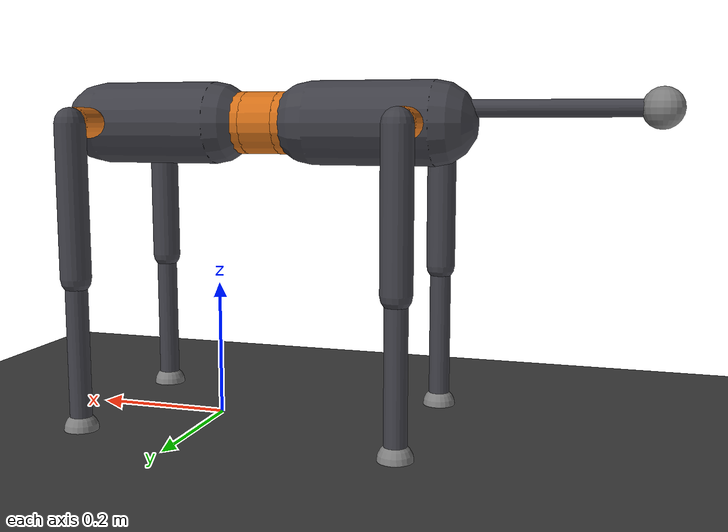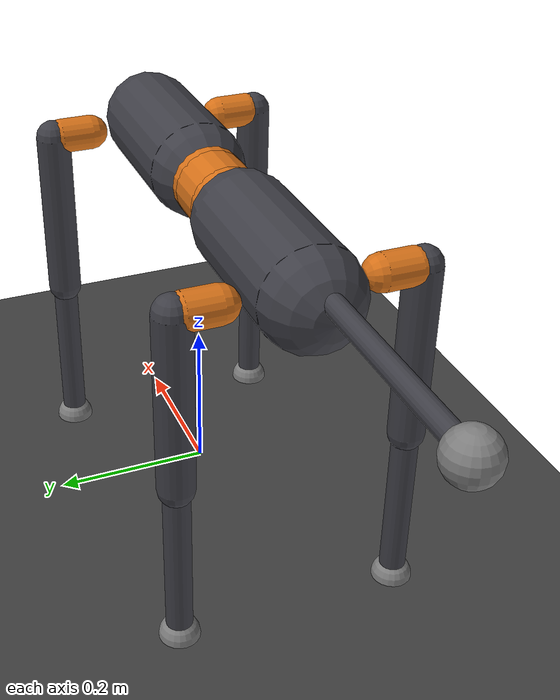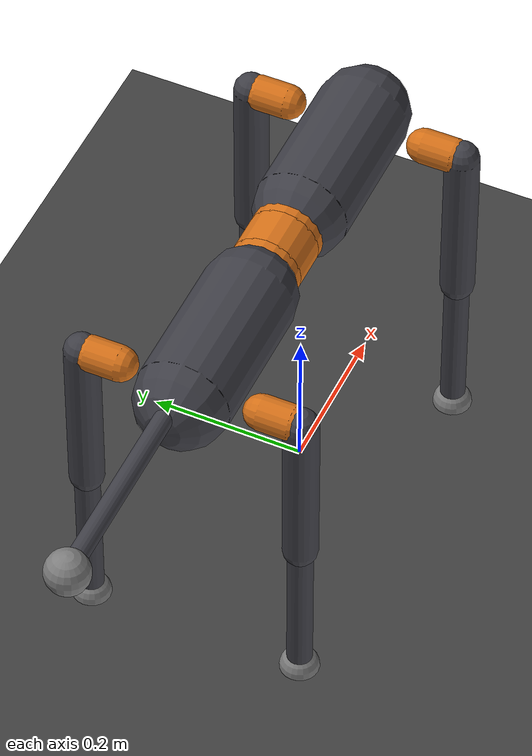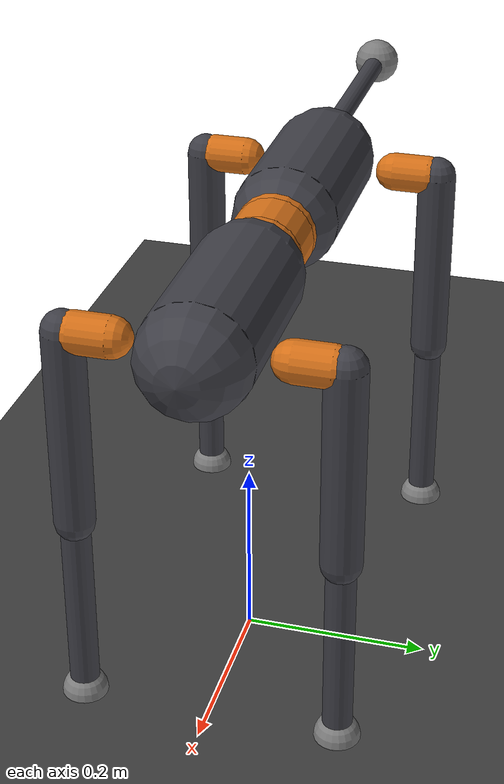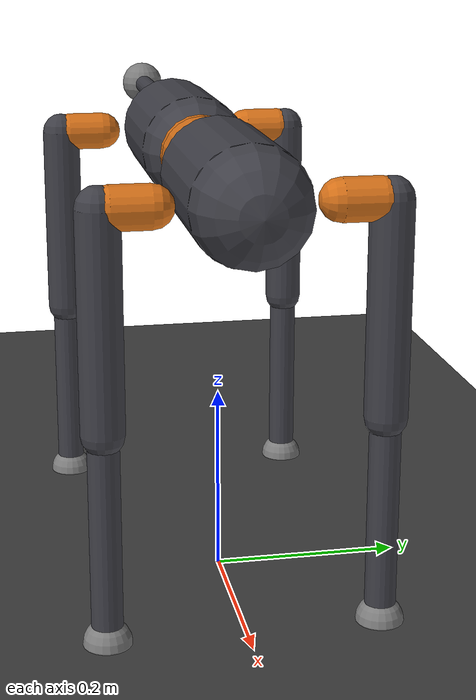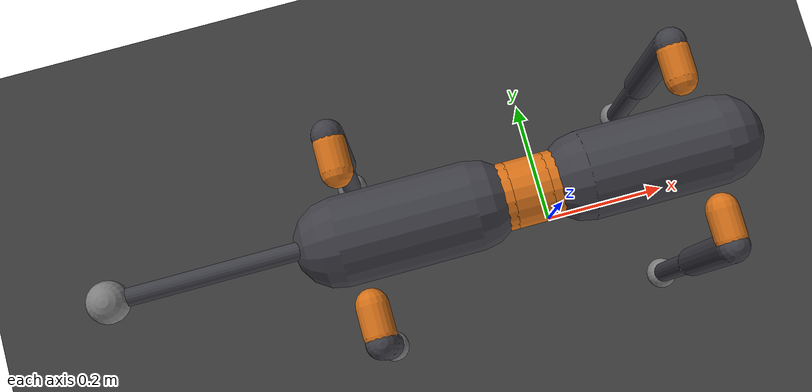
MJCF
<mujoco model="spine_quadruped">

  <compiler angle="radian" autolimits="true"/>
  <option timestep="0.002" integrator="implicitfast"/>

  <default>
    <geom type="capsule" density="600" friction="0.9 0.01 0.001"/>
    <joint type="hinge" damping="0.5" armature="0.01"/>
    <motor ctrlrange="-33.5 33.5"/>
    <default class="spine">
      <motor ctrlrange="-50 50"/>
      <joint damping="1.0" armature="0.02"/>
    </default>
    <default class="leg">
      <geom size="0.022"/>
    </default>
  </default>

  <asset>
    <texture name="grid" type="2d" builtin="checker" rgb1="0.2 0.2 0.2" rgb2="0.3 0.3 0.3"
             width="512" height="512"/>
    <material name="grid" texture="grid" texrepeat="8 8" reflectance="0.1"/>
    <material name="body" rgba="0.25 0.25 0.28 1"/>
    <material name="accent" rgba="0.85 0.45 0.1 1"/>
  </asset>

  <worldbody>
    <light pos="0 0 3" dir="0 0 -1" diffuse="0.8 0.8 0.8"/>
    <geom name="floor" type="plane" size="20 20 0.05" material="grid"/>

    <!-- ============ FRONT BODY ============ -->
    <body name="front_body" pos="0 0 0.44">
      <freejoint/>
      <geom name="front_trunk" fromto="0 0 0 0.18 0 0" size="0.06" material="body"/>
      <site name="imu" pos="0.1 0 0.05"/>

      <!-- front left leg -->
      <body name="fl_hip" pos="0.16 0.09 0">
        <joint name="fl_abduct" axis="1 0 0" range="-0.7 0.7"/>
        <geom class="leg" fromto="0 0 0 0 0.04 0" material="accent"/>
        <body name="fl_thigh" pos="0 0.05 0">
          <joint name="fl_hip_pitch" axis="0 1 0" range="-2.0 2.0"/>
          <geom class="leg" fromto="0 0 0 0 0 -0.22" material="body"/>
          <body name="fl_calf" pos="0 0 -0.22">
            <joint name="fl_knee" axis="0 1 0" range="-2.6 -0.2"/>
            <geom class="leg" fromto="0 0 0 0 0 -0.22" size="0.016" material="body"/>
            <geom name="fl_foot" type="sphere" size="0.025" pos="0 0 -0.22" friction="1.2"/>
          </body>
        </body>
      </body>

      <!-- front right leg -->
      <body name="fr_hip" pos="0.16 -0.09 0">
        <joint name="fr_abduct" axis="1 0 0" range="-0.7 0.7"/>
        <geom class="leg" fromto="0 0 0 0 -0.04 0" material="accent"/>
        <body name="fr_thigh" pos="0 -0.05 0">
          <joint name="fr_hip_pitch" axis="0 1 0" range="-2.0 2.0"/>
          <geom class="leg" fromto="0 0 0 0 0 -0.22" material="body"/>
          <body name="fr_calf" pos="0 0 -0.22">
            <joint name="fr_knee" axis="0 1 0" range="-2.6 -0.2"/>
            <geom class="leg" fromto="0 0 0 0 0 -0.22" size="0.016" material="body"/>
            <geom name="fr_foot" type="sphere" size="0.025" pos="0 0 -0.22" friction="1.2"/>
          </body>
        </body>
      </body>

      <!-- ============ SPINE: yaw -> pitch -> roll (S-Cheetah ordering) ============ -->
      <body name="spine_yaw" pos="0 0 0">
        <joint name="spine_yaw" class="spine" axis="0 0 1" range="-1.0 1.0"/>
        <geom name="spine_y" fromto="0 0 0 -0.05 0 0" size="0.045" material="accent"/>

        <body name="spine_pitch" pos="-0.05 0 0">
          <joint name="spine_pitch" class="spine" axis="0 1 0" range="-1.5 1.5"/>
          <geom name="spine_p" fromto="0 0 0 -0.05 0 0" size="0.045" material="accent"/>

          <body name="spine_roll" pos="-0.05 0 0">
            <joint name="spine_roll" class="spine" axis="1 0 0" range="-2.0 2.0"/>
            <geom name="spine_r" fromto="0 0 0 -0.05 0 0" size="0.045" material="accent"/>

            <!-- ============ REAR BODY ============ -->
            <body name="rear_body" pos="-0.05 0 0">
              <geom name="rear_trunk" fromto="0 0 0 -0.18 0 0" size="0.06" material="body"/>

              <!-- rear left leg -->
              <body name="rl_hip" pos="-0.16 0.09 0">
                <joint name="rl_abduct" axis="1 0 0" range="-0.7 0.7"/>
                <geom class="leg" fromto="0 0 0 0 0.04 0" material="accent"/>
                <body name="rl_thigh" pos="0 0.05 0">
                  <joint name="rl_hip_pitch" axis="0 1 0" range="-2.0 2.0"/>
                  <geom class="leg" fromto="0 0 0 0 0 -0.22" material="body"/>
                  <body name="rl_calf" pos="0 0 -0.22">
                    <joint name="rl_knee" axis="0 1 0" range="-2.6 -0.2"/>
                    <geom class="leg" fromto="0 0 0 0 0 -0.22" size="0.016" material="body"/>
                    <geom name="rl_foot" type="sphere" size="0.025" pos="0 0 -0.22" friction="1.2"/>
                  </body>
                </body>
              </body>

              <!-- rear right leg -->
              <body name="rr_hip" pos="-0.16 -0.09 0">
                <joint name="rr_abduct" axis="1 0 0" range="-0.7 0.7"/>
                <geom class="leg" fromto="0 0 0 0 -0.04 0" material="accent"/>
                <body name="rr_thigh" pos="0 -0.05 0">
                  <joint name="rr_hip_pitch" axis="0 1 0" range="-2.0 2.0"/>
                  <geom class="leg" fromto="0 0 0 0 0 -0.22" material="body"/>
                  <body name="rr_calf" pos="0 0 -0.22">
                    <joint name="rr_knee" axis="0 1 0" range="-2.6 -0.2"/>
                    <geom class="leg" fromto="0 0 0 0 0 -0.22" size="0.016" material="body"/>
                    <geom name="rr_foot" type="sphere" size="0.025" pos="0 0 -0.22" friction="1.2"/>
                  </body>
                </body>
              </body>

              <!-- tail: inertial authority for turning -->
              <body name="tail" pos="-0.18 0 0.02">
                <joint name="tail_yaw" axis="0 0 1" range="-1.2 1.2" damping="0.3"/>
                <joint name="tail_pitch" axis="0 1 0" range="-1.0 1.0" damping="0.3"/>
                <geom name="tail_geom" fromto="0 0 0 -0.30 0 0" size="0.012" density="400" material="body"/>
                <geom name="tail_tip" type="sphere" size="0.028" pos="-0.30 0 0" density="1500"/>
              </body>
            </body>
          </body>
        </body>
      </body>
    </body>
  </worldbody>

  <actuator>
    <motor name="fl_abduct"    joint="fl_abduct"/>
    <motor name="fl_hip_pitch" joint="fl_hip_pitch"/>
    <motor name="fl_knee"      joint="fl_knee"/>
    <motor name="fr_abduct"    joint="fr_abduct"/>
    <motor name="fr_hip_pitch" joint="fr_hip_pitch"/>
    <motor name="fr_knee"      joint="fr_knee"/>
    <motor name="rl_abduct"    joint="rl_abduct"/>
    <motor name="rl_hip_pitch" joint="rl_hip_pitch"/>
    <motor name="rl_knee"      joint="rl_knee"/>
    <motor name="rr_abduct"    joint="rr_abduct"/>
    <motor name="rr_hip_pitch" joint="rr_hip_pitch"/>
    <motor name="rr_knee"      joint="rr_knee"/>
    <motor name="spine_yaw"   class="spine" joint="spine_yaw"/>
    <motor name="spine_pitch" class="spine" joint="spine_pitch"/>
    <motor name="spine_roll"  class="spine" joint="spine_roll"/>
    <motor name="tail_yaw"   joint="tail_yaw"   ctrlrange="-8 8"/>
    <motor name="tail_pitch" joint="tail_pitch" ctrlrange="-8 8"/>
  </actuator>

  <sensor>
    <framequat name="body_quat" objtype="site" objname="imu"/>
    <gyro name="body_gyro" site="imu"/>
    <accelerometer name="body_acc" site="imu"/>
  </sensor>
</mujoco>
